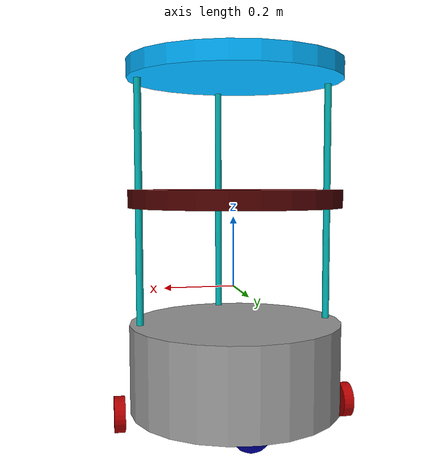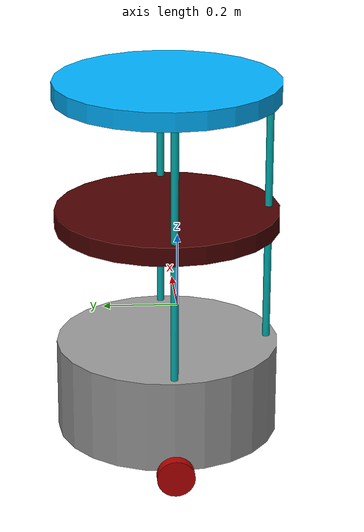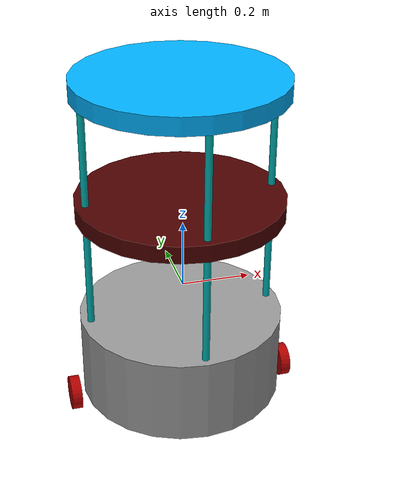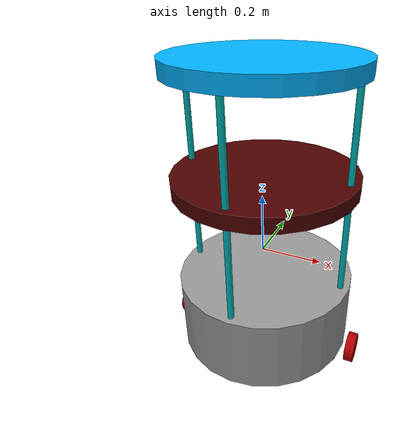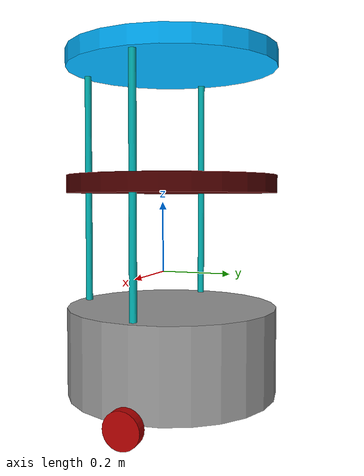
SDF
<?xml version='1.0'?>
<sdf version='1.6'>
  <model name='dummy_robot_model'>
    <link name='link_0'>
      <pose frame=''>0 0.027 0.6025 0 -0 0</pose>
      <inertial>
        <mass>1</mass>
        <inertia>
          <ixx>0.145833</ixx>
          <ixy>0</ixy>
          <ixz>0</ixz>
          <iyy>0.145833</iyy>
          <iyz>0</iyz>
          <izz>0.125</izz>
        </inertia>
        <pose frame=''>0 0 0 0 -0 0</pose>
      </inertial>
      <self_collide>0</self_collide>
      <kinematic>0</kinematic>
      <visual name='visual'>
        <pose frame=''>0 0 0 0 -0 0</pose>
        <geometry>
          <cylinder>
            <radius>0.3</radius>
            <length>0.05</length>
          </cylinder>
        </geometry>
        <material>
          <lighting>1</lighting>
          <script>
            <uri>file://media/materials/scripts/gazebo.material</uri>
            <name>Gazebo/Grey</name>
          </script>
          <shader type='pixel'>
            <normal_map>__default__</normal_map>
          </shader>
          <ambient>0 0 1 1</ambient>
          <diffuse>0 0.7 1 1</diffuse>
          <specular>0.01 0.01 1 1</specular>
          <emissive>0 0 0 1</emissive>
        </material>
        <transparency>0</transparency>
        <cast_shadows>1</cast_shadows>
      </visual>
      <collision name='collision'>
        <laser_retro>0</laser_retro>
        <max_contacts>10</max_contacts>
        <pose frame=''>0 0 0 0 -0 0</pose>
        <geometry>
          <cylinder>
            <radius>0.3</radius>
            <length>0.05</length>
          </cylinder>
        </geometry>
        <surface>
          <friction>
            <ode>
              <mu>1</mu>
              <mu2>1</mu2>
              <fdir1>0 0 0</fdir1>
              <slip1>0</slip1>
              <slip2>0</slip2>
            </ode>
            <torsional>
              <coefficient>1</coefficient>
              <patch_radius>0</patch_radius>
              <surface_radius>0</surface_radius>
              <use_patch_radius>1</use_patch_radius>
              <ode>
                <slip>0</slip>
              </ode>
            </torsional>
          </friction>
          <bounce>
            <restitution_coefficient>0</restitution_coefficient>
            <threshold>1e+06</threshold>
          </bounce>
          <contact>
            <collide_without_contact>0</collide_without_contact>
            <collide_without_contact_bitmask>1</collide_without_contact_bitmask>
            <collide_bitmask>1</collide_bitmask>
            <ode>
              <soft_cfm>0</soft_cfm>
              <soft_erp>0.2</soft_erp>
              <kp>1e+13</kp>
              <kd>1</kd>
              <max_vel>0.01</max_vel>
              <min_depth>0</min_depth>
            </ode>
            <bullet>
              <split_impulse>1</split_impulse>
              <split_impulse_penetration_threshold>-0.01</split_impulse_penetration_threshold>
              <soft_cfm>0</soft_cfm>
              <soft_erp>0.2</soft_erp>
              <kp>1e+13</kp>
              <kd>1</kd>
            </bullet>
          </contact>
        </surface>
      </collision>
    </link>
    <link name='link_0_clone'>
      <pose frame=''>0 0.027 -0.2225 0 -0 0</pose>
      <inertial>
        <mass>1</mass>
        <inertia>
          <ixx>0.145833</ixx>
          <ixy>0</ixy>
          <ixz>0</ixz>
          <iyy>0.145833</iyy>
          <iyz>0</iyz>
          <izz>0.125</izz>
        </inertia>
        <pose frame=''>0 0 0 0 -0 0</pose>
      </inertial>
      <self_collide>0</self_collide>
      <kinematic>0</kinematic>
      <visual name='visual'>
        <pose frame=''>0 0 0 0 -0 0</pose>
        <geometry>
          <cylinder>
            <radius>0.3</radius>
            <length>0.25</length>
          </cylinder>
        </geometry>
        <material>
          <lighting>1</lighting>
          <script>
            <uri>file://media/materials/scripts/gazebo.material</uri>
            <name>Gazebo/Grey</name>
          </script>
          <shader type='pixel'>
            <normal_map>__default__</normal_map>
          </shader>
          <ambient>0.3 0.3 0.3 1</ambient>
          <diffuse>0.7 0.7 0.7 1</diffuse>
          <specular>0.01 0.01 0.01 1</specular>
          <emissive>0 0 0 1</emissive>
        </material>
        <transparency>0</transparency>
        <cast_shadows>1</cast_shadows>
      </visual>
      <collision name='collision'>
        <laser_retro>0</laser_retro>
        <max_contacts>10</max_contacts>
        <pose frame=''>0 0 0 0 -0 0</pose>
        <geometry>
          <cylinder>
            <radius>0.3</radius>
            <length>0.25</length>
          </cylinder>
        </geometry>
        <surface>
          <friction>
            <ode>
              <mu>1</mu>
              <mu2>1</mu2>
              <fdir1>0 0 0</fdir1>
              <slip1>0</slip1>
              <slip2>0</slip2>
            </ode>
            <torsional>
              <coefficient>1</coefficient>
              <patch_radius>0</patch_radius>
              <surface_radius>0</surface_radius>
              <use_patch_radius>1</use_patch_radius>
              <ode>
                <slip>0</slip>
              </ode>
            </torsional>
          </friction>
          <bounce>
            <restitution_coefficient>0</restitution_coefficient>
            <threshold>1e+06</threshold>
          </bounce>
          <contact>
            <collide_without_contact>0</collide_without_contact>
            <collide_without_contact_bitmask>1</collide_without_contact_bitmask>
            <collide_bitmask>1</collide_bitmask>
            <ode>
              <soft_cfm>0</soft_cfm>
              <soft_erp>0.2</soft_erp>
              <kp>1e+13</kp>
              <kd>1</kd>
              <max_vel>0.01</max_vel>
              <min_depth>0</min_depth>
            </ode>
            <bullet>
              <split_impulse>1</split_impulse>
              <split_impulse_penetration_threshold>-0.01</split_impulse_penetration_threshold>
              <soft_cfm>0</soft_cfm>
              <soft_erp>0.2</soft_erp>
              <kp>1e+13</kp>
              <kd>1</kd>
            </bullet>
          </contact>
        </surface>
      </collision>
    </link>
    <link name='link_0_clone_0'>
      <pose frame=''>0 0.027 0.2525 0 -0 0</pose>
      <inertial>
        <mass>1</mass>
        <inertia>
          <ixx>0.145833</ixx>
          <ixy>0</ixy>
          <ixz>0</ixz>
          <iyy>0.145833</iyy>
          <iyz>0</iyz>
          <izz>0.125</izz>
        </inertia>
        <pose frame=''>0 0 0 0 -0 0</pose>
      </inertial>
      <self_collide>0</self_collide>
      <kinematic>0</kinematic>
      <visual name='visual'>
        <pose frame=''>0 0 0 0 -0 0</pose>
        <geometry>
          <cylinder>
            <radius>0.3</radius>
            <length>0.05</length>
          </cylinder>
        </geometry>
        <material>
          <lighting>1</lighting>
          <script>
            <uri>file://media/materials/scripts/gazebo.material</uri>
            <name>Gazebo/Grey</name>
          </script>
          <shader type='pixel'>
            <normal_map>__default__</normal_map>
          </shader>
          <ambient>0.3 0 0 0</ambient>
          <diffuse>0.7 0.7 0.7 1</diffuse>
          <specular>0.01 0.01 0.01 1</specular>
          <emissive>0 0 0 1</emissive>
        </material>
        <transparency>0</transparency>
        <cast_shadows>1</cast_shadows>
      </visual>
      <collision name='collision'>
        <laser_retro>0</laser_retro>
        <max_contacts>10</max_contacts>
        <pose frame=''>0 0 0 0 -0 0</pose>
        <geometry>
          <cylinder>
            <radius>0.3</radius>
            <length>0.05</length>
          </cylinder>
        </geometry>
        <surface>
          <friction>
            <ode>
              <mu>1</mu>
              <mu2>1</mu2>
              <fdir1>0 0 0</fdir1>
              <slip1>0</slip1>
              <slip2>0</slip2>
            </ode>
            <torsional>
              <coefficient>1</coefficient>
              <patch_radius>0</patch_radius>
              <surface_radius>0</surface_radius>
              <use_patch_radius>1</use_patch_radius>
              <ode>
                <slip>0</slip>
              </ode>
            </torsional>
          </friction>
          <bounce>
            <restitution_coefficient>0</restitution_coefficient>
            <threshold>1e+06</threshold>
          </bounce>
          <contact>
            <collide_without_contact>0</collide_without_contact>
            <collide_without_contact_bitmask>1</collide_without_contact_bitmask>
            <collide_bitmask>1</collide_bitmask>
            <ode>
              <soft_cfm>0</soft_cfm>
              <soft_erp>0.2</soft_erp>
              <kp>1e+13</kp>
              <kd>1</kd>
              <max_vel>0.01</max_vel>
              <min_depth>0</min_depth>
            </ode>
            <bullet>
              <split_impulse>1</split_impulse>
              <split_impulse_penetration_threshold>-0.01</split_impulse_penetration_threshold>
              <soft_cfm>0</soft_cfm>
              <soft_erp>0.2</soft_erp>
              <kp>1e+13</kp>
              <kd>1</kd>
            </bullet>
          </contact>
        </surface>
      </collision>
    </link>
    <link name='link_1'>
      <pose frame=''>-0.27 0.027 0.2525 0 -0 0</pose>
      <inertial>
        <mass>1</mass>
        <inertia>
          <ixx>0.145833</ixx>
          <ixy>0</ixy>
          <ixz>0</ixz>
          <iyy>0.145833</iyy>
          <iyz>0</iyz>
          <izz>0.125</izz>
        </inertia>
        <pose frame=''>0 0 0 0 -0 0</pose>
      </inertial>
      <self_collide>0</self_collide>
      <kinematic>0</kinematic>
      <visual name='visual'>
        <pose frame=''>0 0 0 0 -0 0</pose>
        <geometry>
          <cylinder>
            <radius>0.01</radius>
            <length>0.72</length>
          </cylinder>
        </geometry>
        <material>
          <lighting>1</lighting>
          <script>
            <uri>file://media/materials/scripts/gazebo.material</uri>
            <name>Gazebo/Grey</name>
          </script>
          <shader type='pixel'>
            <normal_map>__default__</normal_map>
          </shader>
          <ambient>0 0.3 0.3 1</ambient>
          <diffuse>0 0.7 0.7 1</diffuse>
          <specular>0 0.01 0.01 1</specular>
          <emissive>0 0 0 1</emissive>
        </material>
        <transparency>0</transparency>
        <cast_shadows>1</cast_shadows>
      </visual>
      <collision name='collision'>
        <laser_retro>0</laser_retro>
        <max_contacts>10</max_contacts>
        <pose frame=''>0 0 0 0 -0 0</pose>
        <geometry>
          <cylinder>
            <radius>0.01</radius>
            <length>0.72</length>
          </cylinder>
        </geometry>
        <surface>
          <friction>
            <ode>
              <mu>1</mu>
              <mu2>1</mu2>
              <fdir1>0 0 0</fdir1>
              <slip1>0</slip1>
              <slip2>0</slip2>
            </ode>
            <torsional>
              <coefficient>1</coefficient>
              <patch_radius>0</patch_radius>
              <surface_radius>0</surface_radius>
              <use_patch_radius>1</use_patch_radius>
              <ode>
                <slip>0</slip>
              </ode>
            </torsional>
          </friction>
          <bounce>
            <restitution_coefficient>0</restitution_coefficient>
            <threshold>1e+06</threshold>
          </bounce>
          <contact>
            <collide_without_contact>0</collide_without_contact>
            <collide_without_contact_bitmask>1</collide_without_contact_bitmask>
            <collide_bitmask>1</collide_bitmask>
            <ode>
              <soft_cfm>0</soft_cfm>
              <soft_erp>0.2</soft_erp>
              <kp>1e+13</kp>
              <kd>1</kd>
              <max_vel>0.01</max_vel>
              <min_depth>0</min_depth>
            </ode>
            <bullet>
              <split_impulse>1</split_impulse>
              <split_impulse_penetration_threshold>-0.01</split_impulse_penetration_threshold>
              <soft_cfm>0</soft_cfm>
              <soft_erp>0.2</soft_erp>
              <kp>1e+13</kp>
              <kd>1</kd>
            </bullet>
          </contact>
        </surface>
      </collision>
    </link>
    <link name='link_1_clone'>
      <pose frame=''>0 -0.243 0.2525 0 -0 0</pose>
      <inertial>
        <mass>1</mass>
        <inertia>
          <ixx>0.145833</ixx>
          <ixy>0</ixy>
          <ixz>0</ixz>
          <iyy>0.145833</iyy>
          <iyz>0</iyz>
          <izz>0.125</izz>
        </inertia>
        <pose frame=''>0 0 0 0 -0 0</pose>
      </inertial>
      <self_collide>0</self_collide>
      <kinematic>0</kinematic>
      <visual name='visual'>
        <pose frame=''>0 0 0 0 -0 0</pose>
        <geometry>
          <cylinder>
            <radius>0.01</radius>
            <length>0.72</length>
          </cylinder>
        </geometry>
        <material>
          <lighting>1</lighting>
          <script>
            <uri>file://media/materials/scripts/gazebo.material</uri>
            <name>Gazebo/Grey</name>
          </script>
          <shader type='pixel'>
            <normal_map>__default__</normal_map>
          </shader>
          <ambient>0 0.3 0.3 1</ambient>
          <diffuse>0 0.7 0.7 1</diffuse>
          <specular>0 0.01 0.01 1</specular>
          <emissive>0 0 0 1</emissive>
        </material>
        <transparency>0</transparency>
        <cast_shadows>1</cast_shadows>
      </visual>
      <collision name='collision'>
        <laser_retro>0</laser_retro>
        <max_contacts>10</max_contacts>
        <pose frame=''>0 0 0 0 -0 0</pose>
        <geometry>
          <cylinder>
            <radius>0.01</radius>
            <length>0.72</length>
          </cylinder>
        </geometry>
        <surface>
          <friction>
            <ode>
              <mu>1</mu>
              <mu2>1</mu2>
              <fdir1>0 0 0</fdir1>
              <slip1>0</slip1>
              <slip2>0</slip2>
            </ode>
            <torsional>
              <coefficient>1</coefficient>
              <patch_radius>0</patch_radius>
              <surface_radius>0</surface_radius>
              <use_patch_radius>1</use_patch_radius>
              <ode>
                <slip>0</slip>
              </ode>
            </torsional>
          </friction>
          <bounce>
            <restitution_coefficient>0</restitution_coefficient>
            <threshold>1e+06</threshold>
          </bounce>
          <contact>
            <collide_without_contact>0</collide_without_contact>
            <collide_without_contact_bitmask>1</collide_without_contact_bitmask>
            <collide_bitmask>1</collide_bitmask>
            <ode>
              <soft_cfm>0</soft_cfm>
              <soft_erp>0.2</soft_erp>
              <kp>1e+13</kp>
              <kd>1</kd>
              <max_vel>0.01</max_vel>
              <min_depth>0</min_depth>
            </ode>
            <bullet>
              <split_impulse>1</split_impulse>
              <split_impulse_penetration_threshold>-0.01</split_impulse_penetration_threshold>
              <soft_cfm>0</soft_cfm>
              <soft_erp>0.2</soft_erp>
              <kp>1e+13</kp>
              <kd>1</kd>
            </bullet>
          </contact>
        </surface>
      </collision>
    </link>
    <link name='link_1_clone_clone'>
      <pose frame=''>0.27 0.027 0.2525 0 -0 0</pose>
      <inertial>
        <mass>1</mass>
        <inertia>
          <ixx>0.145833</ixx>
          <ixy>0</ixy>
          <ixz>0</ixz>
          <iyy>0.145833</iyy>
          <iyz>0</iyz>
          <izz>0.125</izz>
        </inertia>
        <pose frame=''>0 0 0 0 -0 0</pose>
      </inertial>
      <self_collide>0</self_collide>
      <kinematic>0</kinematic>
      <visual name='visual'>
        <pose frame=''>0 0 0 0 -0 0</pose>
        <geometry>
          <cylinder>
            <radius>0.01</radius>
            <length>0.72</length>
          </cylinder>
        </geometry>
        <material>
          <lighting>1</lighting>
          <script>
            <uri>file://media/materials/scripts/gazebo.material</uri>
            <name>Gazebo/Grey</name>
          </script>
          <shader type='pixel'>
            <normal_map>__default__</normal_map>
          </shader>
          <ambient>0 0.3 0.3 1</ambient>
          <diffuse>0 0.7 0.7 1</diffuse>
          <specular>0 0.01 0.01 1</specular>
          <emissive>0 0 0 1</emissive>
        </material>
        <transparency>0</transparency>
        <cast_shadows>1</cast_shadows>
      </visual>
      <collision name='collision'>
        <laser_retro>0</laser_retro>
        <max_contacts>10</max_contacts>
        <pose frame=''>0 0 0 0 -0 0</pose>
        <geometry>
          <cylinder>
            <radius>0.01</radius>
            <length>0.72</length>
          </cylinder>
        </geometry>
        <surface>
          <friction>
            <ode>
              <mu>1</mu>
              <mu2>1</mu2>
              <fdir1>0 0 0</fdir1>
              <slip1>0</slip1>
              <slip2>0</slip2>
            </ode>
            <torsional>
              <coefficient>1</coefficient>
              <patch_radius>0</patch_radius>
              <surface_radius>0</surface_radius>
              <use_patch_radius>1</use_patch_radius>
              <ode>
                <slip>0</slip>
              </ode>
            </torsional>
          </friction>
          <bounce>
            <restitution_coefficient>0</restitution_coefficient>
            <threshold>1e+06</threshold>
          </bounce>
          <contact>
            <collide_without_contact>0</collide_without_contact>
            <collide_without_contact_bitmask>1</collide_without_contact_bitmask>
            <collide_bitmask>1</collide_bitmask>
            <ode>
              <soft_cfm>0</soft_cfm>
              <soft_erp>0.2</soft_erp>
              <kp>1e+13</kp>
              <kd>1</kd>
              <max_vel>0.01</max_vel>
              <min_depth>0</min_depth>
            </ode>
            <bullet>
              <split_impulse>1</split_impulse>
              <split_impulse_penetration_threshold>-0.01</split_impulse_penetration_threshold>
              <soft_cfm>0</soft_cfm>
              <soft_erp>0.2</soft_erp>
              <kp>1e+13</kp>
              <kd>1</kd>
            </bullet>
          </contact>
        </surface>
      </collision>
    </link>
    <link name='link_2'>
      <pose frame=''>-0 0.227 -0.3475 0 -0 0</pose>
      <inertial>
        <mass>1</mass>
        <inertia>
          <ixx>0.1</ixx>
          <ixy>0</ixy>
          <ixz>0</ixz>
          <iyy>0.1</iyy>
          <iyz>0</iyz>
          <izz>0.1</izz>
        </inertia>
        <pose frame=''>0 0 0 0 -0 0</pose>
      </inertial>
      <self_collide>0</self_collide>
      <kinematic>0</kinematic>
      <visual name='visual'>
        <pose frame=''>0 0 0 0 -0 0</pose>
        <geometry>
          <sphere>
            <radius>0.055</radius>
          </sphere>
        </geometry>
        <material>
          <lighting>1</lighting>
          <script>
            <uri>file://media/materials/scripts/gazebo.material</uri>
            <name>Gazebo/Grey</name>
          </script>
          <shader type='pixel'>
            <normal_map>__default__</normal_map>
          </shader>
          <ambient>0.3 0.3 0.3 1</ambient>
          <diffuse>0 0 0.7 1</diffuse>
          <specular>0 0 0.01 1</specular>
          <emissive>0 0 1 1</emissive>
        </material>
        <transparency>0</transparency>
        <cast_shadows>1</cast_shadows>
      </visual>
      <collision name='collision'>
        <laser_retro>0</laser_retro>
        <max_contacts>10</max_contacts>
        <pose frame=''>0 0 0 0 -0 0</pose>
        <geometry>
          <sphere>
            <radius>0.055</radius>
          </sphere>
        </geometry>
        <surface>
          <friction>
            <ode>
              <mu>0</mu>
              <mu2>0</mu2>
              <fdir1>0 0 0</fdir1>
              <slip1>1</slip1>
              <slip2>1</slip2>
            </ode>
            <torsional>
              <coefficient>1</coefficient>
              <patch_radius>0</patch_radius>
              <surface_radius>0</surface_radius>
              <use_patch_radius>1</use_patch_radius>
              <ode>
                <slip>0</slip>
              </ode>
            </torsional>
          </friction>
          <bounce>
            <restitution_coefficient>0</restitution_coefficient>
            <threshold>1e+06</threshold>
          </bounce>
          <contact>
            <collide_without_contact>0</collide_without_contact>
            <collide_without_contact_bitmask>1</collide_without_contact_bitmask>
            <collide_bitmask>1</collide_bitmask>
            <ode>
              <soft_cfm>0</soft_cfm>
              <soft_erp>0.2</soft_erp>
              <kp>1e+13</kp>
              <kd>1</kd>
              <max_vel>0.01</max_vel>
              <min_depth>0</min_depth>
            </ode>
            <bullet>
              <split_impulse>1</split_impulse>
              <split_impulse_penetration_threshold>-0.01</split_impulse_penetration_threshold>
              <soft_cfm>0</soft_cfm>
              <soft_erp>0.2</soft_erp>
              <kp>1e+13</kp>
              <kd>1</kd>
            </bullet>
          </contact>
        </surface>
      </collision>
    </link>
    <link name='link_2_clone'>
      <pose frame=''>0 -0.173 -0.3475 0 -0 0</pose>
      <inertial>
        <mass>1</mass>
        <inertia>
          <ixx>0.1</ixx>
          <ixy>0</ixy>
          <ixz>0</ixz>
          <iyy>0.1</iyy>
          <iyz>0</iyz>
          <izz>0.1</izz>
        </inertia>
        <pose frame=''>0 0 0 0 -0 0</pose>
      </inertial>
      <self_collide>0</self_collide>
      <kinematic>0</kinematic>
      <visual name='visual'>
        <pose frame=''>0 0 0 0 -0 0</pose>
        <geometry>
          <sphere>
            <radius>0.055</radius>
          </sphere>
        </geometry>
        <material>
          <lighting>1</lighting>
          <script>
            <uri>file://media/materials/scripts/gazebo.material</uri>
            <name>Gazebo/Grey</name>
          </script>
          <shader type='pixel'>
            <normal_map>__default__</normal_map>
          </shader>
          <ambient>0.3 0.3 0.3 1</ambient>
          <diffuse>0.7 0.7 0.7 1</diffuse>
          <specular>0.01 0.01 0.01 1</specular>
          <emissive>0 0 0 1</emissive>
        </material>
        <transparency>0</transparency>
        <cast_shadows>1</cast_shadows>
      </visual>
      <collision name='collision'>
        <laser_retro>0</laser_retro>
        <max_contacts>10</max_contacts>
        <pose frame=''>0 0 0 0 -0 0</pose>
        <geometry>
          <sphere>
            <radius>0.055</radius>
          </sphere>
        </geometry>
        <surface>
          <friction>
            <ode>
              <mu>1</mu>
              <mu2>1</mu2>
              <fdir1>0 0 0</fdir1>
              <slip1>0</slip1>
              <slip2>0</slip2>
            </ode>
            <torsional>
              <coefficient>1</coefficient>
              <patch_radius>0</patch_radius>
              <surface_radius>0</surface_radius>
              <use_patch_radius>1</use_patch_radius>
              <ode>
                <slip>0</slip>
              </ode>
            </torsional>
          </friction>
          <bounce>
            <restitution_coefficient>0</restitution_coefficient>
            <threshold>1e+06</threshold>
          </bounce>
          <contact>
            <collide_without_contact>0</collide_without_contact>
            <collide_without_contact_bitmask>1</collide_without_contact_bitmask>
            <collide_bitmask>1</collide_bitmask>
            <ode>
              <soft_cfm>0</soft_cfm>
              <soft_erp>0.2</soft_erp>
              <kp>1e+13</kp>
              <kd>1</kd>
              <max_vel>0.01</max_vel>
              <min_depth>0</min_depth>
            </ode>
            <bullet>
              <split_impulse>1</split_impulse>
              <split_impulse_penetration_threshold>-0.01</split_impulse_penetration_threshold>
              <soft_cfm>0</soft_cfm>
              <soft_erp>0.2</soft_erp>
              <kp>1e+13</kp>
              <kd>1</kd>
            </bullet>
          </contact>
        </surface>
      </collision>
    </link>
    <link name='link_3'>
      <pose frame=''>0.33 0.027 -0.3475 -0.000314 -1.5707 0.000314</pose>
      <inertial>
        <mass>1</mass>
        <inertia>
          <ixx>0.145833</ixx>
          <ixy>0</ixy>
          <ixz>0</ixz>
          <iyy>0.145833</iyy>
          <iyz>0</iyz>
          <izz>0.125</izz>
        </inertia>
        <pose frame=''>0 0 0 0 -0 0</pose>
      </inertial>
      <self_collide>0</self_collide>
      <kinematic>0</kinematic>
      <visual name='visual'>
        <pose frame=''>0 0 0 0 -0 0</pose>
        <geometry>
          <cylinder>
            <radius>0.05</radius>
            <length>0.03</length>
          </cylinder>
        </geometry>
        <material>
          <lighting>1</lighting>
          <script>
            <uri>file://media/materials/scripts/gazebo.material</uri>
            <name>Gazebo/Grey</name>
          </script>
          <shader type='pixel'>
            <normal_map>__default__</normal_map>
          </shader>
          <ambient>0.3 0 0 0</ambient>
          <diffuse>0.7 0 0 0</diffuse>
          <specular>0.01 0 0 0</specular>
          <emissive>1 0 0 0</emissive>
        </material>
        <transparency>0</transparency>
        <cast_shadows>1</cast_shadows>
      </visual>
      <collision name='collision'>
        <laser_retro>0</laser_retro>
        <max_contacts>10</max_contacts>
        <pose frame=''>0 0 0 0 -0 0</pose>
        <geometry>
          <cylinder>
            <radius>0.05</radius>
            <length>0.03</length>
          </cylinder>
        </geometry>
        <surface>
          <friction>
            <ode>
              <mu>1</mu>
              <mu2>1</mu2>
              <fdir1>0 0 0</fdir1>
              <slip1>0</slip1>
              <slip2>0</slip2>
            </ode>
            <torsional>
              <coefficient>1</coefficient>
              <patch_radius>0</patch_radius>
              <surface_radius>0</surface_radius>
              <use_patch_radius>1</use_patch_radius>
              <ode>
                <slip>0</slip>
              </ode>
            </torsional>
          </friction>
          <bounce>
            <restitution_coefficient>0</restitution_coefficient>
            <threshold>1e+06</threshold>
          </bounce>
          <contact>
            <collide_without_contact>0</collide_without_contact>
            <collide_without_contact_bitmask>1</collide_without_contact_bitmask>
            <collide_bitmask>1</collide_bitmask>
            <ode>
              <soft_cfm>0</soft_cfm>
              <soft_erp>0.2</soft_erp>
              <kp>1e+13</kp>
              <kd>1</kd>
              <max_vel>0.01</max_vel>
              <min_depth>0</min_depth>
            </ode>
            <bullet>
              <split_impulse>1</split_impulse>
              <split_impulse_penetration_threshold>-0.01</split_impulse_penetration_threshold>
              <soft_cfm>0</soft_cfm>
              <soft_erp>0.2</soft_erp>
              <kp>1e+13</kp>
              <kd>1</kd>
            </bullet>
          </contact>
        </surface>
      </collision>
    </link>
    <link name='link_3_clone'>
      <pose frame=''>-0.33 0.027 -0.3475 -0.000314 -1.5707 0.000314</pose>
      <inertial>
        <mass>1</mass>
        <inertia>
          <ixx>0.145833</ixx>
          <ixy>0</ixy>
          <ixz>0</ixz>
          <iyy>0.145833</iyy>
          <iyz>0</iyz>
          <izz>0.125</izz>
        </inertia>
        <pose frame=''>0 0 0 0 -0 0</pose>
      </inertial>
      <self_collide>0</self_collide>
      <kinematic>0</kinematic>
      <visual name='visual'>
        <pose frame=''>0 0 0 0 -0 0</pose>
        <geometry>
          <cylinder>
            <radius>0.05</radius>
            <length>0.03</length>
          </cylinder>
        </geometry>
        <material>
          <lighting>1</lighting>
          <script>
            <uri>file://media/materials/scripts/gazebo.material</uri>
            <name>Gazebo/Grey</name>
          </script>
          <shader type='pixel'>
            <normal_map>__default__</normal_map>
          </shader>
          <ambient>0.3 0 0 0</ambient>
          <diffuse>0.7 0 0 0</diffuse>
          <specular>0.01 0 0 0</specular>
          <emissive>1 0 0 0</emissive>
        </material>
        <transparency>0</transparency>
        <cast_shadows>1</cast_shadows>
      </visual>
      <collision name='collision'>
        <laser_retro>0</laser_retro>
        <max_contacts>10</max_contacts>
        <pose frame=''>0 0 0 0 -0 0</pose>
        <geometry>
          <cylinder>
            <radius>0.05</radius>
            <length>0.03</length>
          </cylinder>
        </geometry>
        <surface>
          <friction>
            <ode>
              <mu>1</mu>
              <mu2>1</mu2>
              <fdir1>0 0 0</fdir1>
              <slip1>0</slip1>
              <slip2>0</slip2>
            </ode>
            <torsional>
              <coefficient>1</coefficient>
              <patch_radius>0</patch_radius>
              <surface_radius>0</surface_radius>
              <use_patch_radius>1</use_patch_radius>
              <ode>
                <slip>0</slip>
              </ode>
            </torsional>
          </friction>
          <bounce>
            <restitution_coefficient>0</restitution_coefficient>
            <threshold>1e+06</threshold>
          </bounce>
          <contact>
            <collide_without_contact>0</collide_without_contact>
            <collide_without_contact_bitmask>1</collide_without_contact_bitmask>
            <collide_bitmask>1</collide_bitmask>
            <ode>
              <soft_cfm>0</soft_cfm>
              <soft_erp>0.2</soft_erp>
              <kp>1e+13</kp>
              <kd>1</kd>
              <max_vel>0.01</max_vel>
              <min_depth>0</min_depth>
            </ode>
            <bullet>
              <split_impulse>1</split_impulse>
              <split_impulse_penetration_threshold>-0.01</split_impulse_penetration_threshold>
              <soft_cfm>0</soft_cfm>
              <soft_erp>0.2</soft_erp>
              <kp>1e+13</kp>
              <kd>1</kd>
            </bullet>
          </contact>
        </surface>
      </collision>
    </link>
    <joint name='link_0_JOINT_0' type='screw'>
      <parent>link_0</parent>
      <child>link_1_clone_clone</child>
      <pose frame=''>0 0 0 0 -0 0</pose>
      <axis>
        <xyz>0 0 1</xyz>
        <use_parent_model_frame>0</use_parent_model_frame>
        <limit>
          <lower>-1.79769e+308</lower>
          <upper>1.79769e+308</upper>
          <effort>-1</effort>
          <velocity>-1</velocity>
        </limit>
        <dynamics>
          <spring_reference>0</spring_reference>
          <spring_stiffness>0</spring_stiffness>
          <damping>0</damping>
          <friction>0</friction>
        </dynamics>
      </axis>
      <physics>
        <ode>
          <limit>
            <cfm>0</cfm>
            <erp>0.2</erp>
          </limit>
          <suspension>
            <cfm>0</cfm>
            <erp>0.2</erp>
          </suspension>
        </ode>
      </physics>
    </joint>
    <joint name='link_0_JOINT_1' type='screw'>
      <parent>link_0</parent>
      <child>link_1</child>
      <pose frame=''>0 0 0 0 -0 0</pose>
      <axis>
        <xyz>0 0 1</xyz>
        <use_parent_model_frame>0</use_parent_model_frame>
        <limit>
          <lower>-1.79769e+308</lower>
          <upper>1.79769e+308</upper>
          <effort>-1</effort>
          <velocity>-1</velocity>
        </limit>
        <dynamics>
          <spring_reference>0</spring_reference>
          <spring_stiffness>0</spring_stiffness>
          <damping>0</damping>
          <friction>0</friction>
        </dynamics>
      </axis>
      <physics>
        <ode>
          <limit>
            <cfm>0</cfm>
            <erp>0.2</erp>
          </limit>
          <suspension>
            <cfm>0</cfm>
            <erp>0.2</erp>
          </suspension>
        </ode>
      </physics>
    </joint>
    <joint name='link_0_JOINT_2' type='screw'>
      <parent>link_0</parent>
      <child>link_1_clone</child>
      <pose frame=''>0 0 0 0 -0 0</pose>
      <axis>
        <xyz>0 0 1</xyz>
        <use_parent_model_frame>0</use_parent_model_frame>
        <limit>
          <lower>-1.79769e+308</lower>
          <upper>1.79769e+308</upper>
          <effort>-1</effort>
          <velocity>-1</velocity>
        </limit>
        <dynamics>
          <spring_reference>0</spring_reference>
          <spring_stiffness>0</spring_stiffness>
          <damping>0</damping>
          <friction>0</friction>
        </dynamics>
      </axis>
      <physics>
        <ode>
          <limit>
            <cfm>0</cfm>
            <erp>0.2</erp>
          </limit>
          <suspension>
            <cfm>0</cfm>
            <erp>0.2</erp>
          </suspension>
        </ode>
      </physics>
    </joint>
    <joint name='link_0_clone_0_JOINT_3' type='fixed'>
      <parent>link_0_clone_0</parent>
      <child>link_1_clone_clone</child>
      <pose frame=''>0 0 0 0 -0 0</pose>
      <physics>
        <ode>
          <limit>
            <cfm>0</cfm>
            <erp>0.2</erp>
          </limit>
          <suspension>
            <cfm>0</cfm>
            <erp>0.2</erp>
          </suspension>
        </ode>
      </physics>
    </joint>
    <joint name='link_0_clone_0_JOINT_4' type='fixed'>
      <parent>link_0_clone_0</parent>
      <child>link_1</child>
      <pose frame=''>0 0 0 0 -0 0</pose>
      <physics>
        <ode>
          <limit>
            <cfm>0</cfm>
            <erp>0.2</erp>
          </limit>
          <suspension>
            <cfm>0</cfm>
            <erp>0.2</erp>
          </suspension>
        </ode>
      </physics>
    </joint>
    <joint name='link_0_clone_0_JOINT_5' type='fixed'>
      <parent>link_0_clone_0</parent>
      <child>link_1_clone</child>
      <pose frame=''>0 0 0 0 -0 0</pose>
      <physics>
        <ode>
          <limit>
            <cfm>0</cfm>
            <erp>0.2</erp>
          </limit>
          <suspension>
            <cfm>0</cfm>
            <erp>0.2</erp>
          </suspension>
        </ode>
      </physics>
    </joint>
    <joint name='link_0_clone_JOINT_0' type='fixed'>
      <parent>link_0_clone</parent>
      <child>link_2_clone</child>
      <pose frame=''>0 0 0 0 -0 0</pose>
      <physics>
        <ode>
          <limit>
            <cfm>0</cfm>
            <erp>0.2</erp>
          </limit>
          <suspension>
            <cfm>0</cfm>
            <erp>0.2</erp>
          </suspension>
        </ode>
      </physics>
    </joint>
    <joint name='link_0_clone_JOINT_10' type='fixed'>
      <parent>link_0_clone</parent>
      <child>link_2</child>
      <pose frame=''>0 0 0 0 -0 0</pose>
      <physics>
        <ode>
          <limit>
            <cfm>0</cfm>
            <erp>0.2</erp>
          </limit>
          <suspension>
            <cfm>0</cfm>
            <erp>0.2</erp>
          </suspension>
        </ode>
      </physics>
    </joint>
    <joint name='link_0_clone_JOINT_11' type='revolute'>
      <parent>link_0_clone</parent>
      <child>link_3_clone</child>
      <pose frame=''>-0.01 0 0 0 -0 0</pose>
      <axis>
        <xyz>0 0 -1</xyz>
        <use_parent_model_frame>0</use_parent_model_frame>
        <limit>
          <lower>-1.79769e+308</lower>
          <upper>1.79769e+308</upper>
          <effort>-1</effort>
          <velocity>-1</velocity>
        </limit>
        <dynamics>
          <spring_reference>0</spring_reference>
          <spring_stiffness>0</spring_stiffness>
          <damping>0</damping>
          <friction>0</friction>
        </dynamics>
      </axis>
      <physics>
        <ode>
          <limit>
            <cfm>0</cfm>
            <erp>0.2</erp>
          </limit>
          <suspension>
            <cfm>0</cfm>
            <erp>0.2</erp>
          </suspension>
        </ode>
      </physics>
    </joint>
    <joint name='link_0_clone_JOINT_12' type='revolute'>
      <parent>link_0_clone</parent>
      <child>link_3</child>
      <pose frame=''>0 0 0 0 -0 0</pose>
      <axis>
        <xyz>0 0 1</xyz>
        <use_parent_model_frame>0</use_parent_model_frame>
        <limit>
          <lower>-1.79769e+308</lower>
          <upper>1.79769e+308</upper>
          <effort>-1</effort>
          <velocity>-1</velocity>
        </limit>
        <dynamics>
          <spring_reference>0</spring_reference>
          <spring_stiffness>0</spring_stiffness>
          <damping>0</damping>
          <friction>0</friction>
        </dynamics>
      </axis>
      <physics>
        <ode>
          <limit>
            <cfm>0</cfm>
            <erp>0.2</erp>
          </limit>
          <suspension>
            <cfm>0</cfm>
            <erp>0.2</erp>
          </suspension>
        </ode>
      </physics>
    </joint>
    <joint name='link_0_clone_JOINT_6' type='fixed'>
      <parent>link_0_clone</parent>
      <child>link_1_clone</child>
      <pose frame=''>0 0 0 0 -0 0</pose>
      <physics>
        <ode>
          <limit>
            <cfm>0</cfm>
            <erp>0.2</erp>
          </limit>
          <suspension>
            <cfm>0</cfm>
            <erp>0.2</erp>
          </suspension>
        </ode>
      </physics>
    </joint>
    <joint name='link_0_clone_JOINT_7' type='fixed'>
      <parent>link_0_clone</parent>
      <child>link_1_clone_clone</child>
      <pose frame=''>0 0 0 0 -0 0</pose>
      <physics>
        <ode>
          <limit>
            <cfm>0</cfm>
            <erp>0.2</erp>
          </limit>
          <suspension>
            <cfm>0</cfm>
            <erp>0.2</erp>
          </suspension>
        </ode>
      </physics>
    </joint>
    <joint name='link_0_clone_JOINT_8' type='fixed'>
      <parent>link_0_clone</parent>
      <child>link_1</child>
      <pose frame=''>0 0 0 0 -0 0</pose>
      <physics>
        <ode>
          <limit>
            <cfm>0</cfm>
            <erp>0.2</erp>
          </limit>
          <suspension>
            <cfm>0</cfm>
            <erp>0.2</erp>
          </suspension>
        </ode>
      </physics>
    </joint>
    <static>0</static>
    <allow_auto_disable>1</allow_auto_disable>
  </model>
</sdf>
